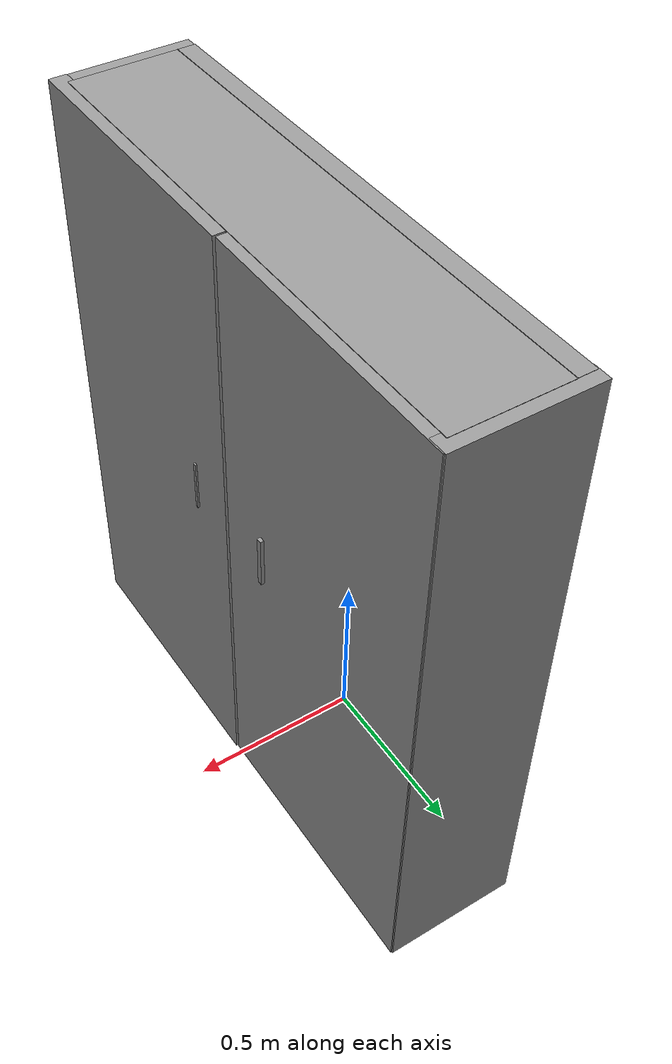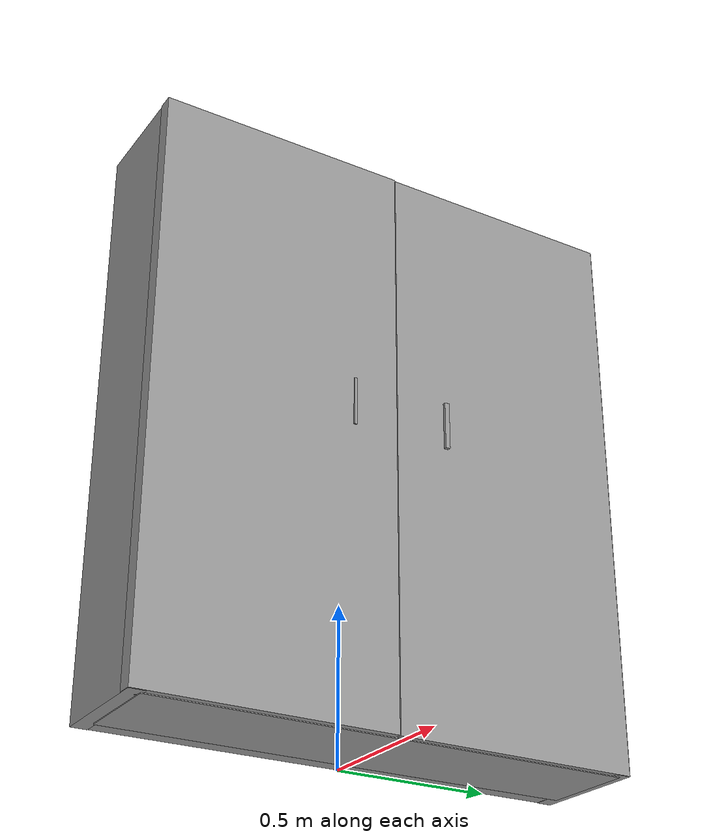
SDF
<?xml version='1.0'?>
<sdf version='1.7'>
  <model name='my_wardrobe'>
    <link name='link'>
      <inertial>
        <mass>1</mass>
        <inertia>
          <ixx>0.166667</ixx>
          <ixy>0</ixy>
          <ixz>0</ixz>
          <iyy>0.166667</iyy>
          <iyz>0</iyz>
          <izz>0.166667</izz>
        </inertia>
        <pose>0 0 0 0 -0 0</pose>
      </inertial>
      <self_collide>0</self_collide>
      <enable_wind>0</enable_wind>
      <kinematic>0</kinematic>
      <pose>0.010503 -0.018536 0.006993 0 -0 0</pose>
      <gravity>1</gravity>
      <visual name='visual'>
        <geometry>
          <box>
            <size>0.05 1.5 1.8</size>
          </box>
        </geometry>
        <material>
          <script>
            <name>Gazebo/Grey</name>
            <uri>file://media/materials/scripts/gazebo.material</uri>
          </script>
          <shader type='pixel'>
            <normal_map>__default__</normal_map>
          </shader>
          <ambient>0.9 0.9 0.9 1</ambient>
          <diffuse>0.9 0.9 0.9 1</diffuse>
          <specular>0.01 0.01 0.01 1</specular>
          <emissive>0 0 0 1</emissive>
        </material>
        <pose>0 0 0.9 0 -0 0</pose>
        <transparency>0</transparency>
        <cast_shadows>1</cast_shadows>
      </visual>
      <collision name='collision'>
        <laser_retro>0</laser_retro>
        <max_contacts>10</max_contacts>
        <pose>0 0 0.9 0 -0 0</pose>
        <geometry>
          <box>
            <size>0.05 1.5 1.8</size>
          </box>
        </geometry>
        <surface>
          <friction>
            <ode>
              <mu>1</mu>
              <mu2>1</mu2>
              <fdir1>0 0 0</fdir1>
              <slip1>0</slip1>
              <slip2>0</slip2>
            </ode>
            <torsional>
              <coefficient>1</coefficient>
              <patch_radius>0</patch_radius>
              <surface_radius>0</surface_radius>
              <use_patch_radius>1</use_patch_radius>
              <ode>
                <slip>0</slip>
              </ode>
            </torsional>
          </friction>
          <bounce>
            <restitution_coefficient>0</restitution_coefficient>
            <threshold>1e+06</threshold>
          </bounce>
          <contact>
            <collide_without_contact>0</collide_without_contact>
            <collide_without_contact_bitmask>1</collide_without_contact_bitmask>
            <collide_bitmask>1</collide_bitmask>
            <ode>
              <soft_cfm>0</soft_cfm>
              <soft_erp>0.2</soft_erp>
              <kp>1e+13</kp>
              <kd>1</kd>
              <max_vel>0.01</max_vel>
              <min_depth>0</min_depth>
            </ode>
            <bullet>
              <split_impulse>1</split_impulse>
              <split_impulse_penetration_threshold>-0.01</split_impulse_penetration_threshold>
              <soft_cfm>0</soft_cfm>
              <soft_erp>0.2</soft_erp>
              <kp>1e+13</kp>
              <kd>1</kd>
            </bullet>
          </contact>
        </surface>
      </collision>
    </link>
    <link name='link_1'>
      <inertial>
        <mass>1</mass>
        <inertia>
          <ixx>0.166667</ixx>
          <ixy>0</ixy>
          <ixz>0</ixz>
          <iyy>0.166667</iyy>
          <iyz>0</iyz>
          <izz>0.166667</izz>
        </inertia>
        <pose>0 0 0 0 -0 0</pose>
      </inertial>
      <pose>0.374225 0.148278 0.975818 0 0 -1.57963</pose>
      <gravity>1</gravity>
      <self_collide>0</self_collide>
      <kinematic>0</kinematic>
      <enable_wind>0</enable_wind>
      <visual name='visual'>
        <pose>0 0 0 0 -0 0</pose>
        <geometry>
          <box>
            <size>0.015 0.01 0.15</size>
          </box>
        </geometry>
        <material>
          <lighting>1</lighting>
          <script>
            <uri>file://media/materials/scripts/gazebo.material</uri>
            <name>Gazebo/Grey</name>
          </script>
          <shader type='pixel'>
            <normal_map>__default__</normal_map>
          </shader>
          <ambient>0.3 0.3 0.3 1</ambient>
          <diffuse>0.7 0.7 0.7 1</diffuse>
          <specular>0.01 0.01 0.01 1</specular>
          <emissive>0 0 0 1</emissive>
        </material>
        <transparency>0</transparency>
        <cast_shadows>1</cast_shadows>
      </visual>
      <collision name='collision'>
        <laser_retro>0</laser_retro>
        <max_contacts>10</max_contacts>
        <pose>0 0 0 0 -0 0</pose>
        <geometry>
          <box>
            <size>0.015 0.01 0.15</size>
          </box>
        </geometry>
        <surface>
          <friction>
            <ode>
              <mu>1</mu>
              <mu2>1</mu2>
              <fdir1>0 0 0</fdir1>
              <slip1>0</slip1>
              <slip2>0</slip2>
            </ode>
            <torsional>
              <coefficient>1</coefficient>
              <patch_radius>0</patch_radius>
              <surface_radius>0</surface_radius>
              <use_patch_radius>1</use_patch_radius>
              <ode>
                <slip>0</slip>
              </ode>
            </torsional>
          </friction>
          <bounce>
            <restitution_coefficient>0</restitution_coefficient>
            <threshold>1e+06</threshold>
          </bounce>
          <contact>
            <collide_without_contact>0</collide_without_contact>
            <collide_without_contact_bitmask>1</collide_without_contact_bitmask>
            <collide_bitmask>1</collide_bitmask>
            <ode>
              <soft_cfm>0</soft_cfm>
              <soft_erp>0.2</soft_erp>
              <kp>1e+13</kp>
              <kd>1</kd>
              <max_vel>0.01</max_vel>
              <min_depth>0</min_depth>
            </ode>
            <bullet>
              <split_impulse>1</split_impulse>
              <split_impulse_penetration_threshold>-0.01</split_impulse_penetration_threshold>
              <soft_cfm>0</soft_cfm>
              <soft_erp>0.2</soft_erp>
              <kp>1e+13</kp>
              <kd>1</kd>
            </bullet>
          </contact>
        </surface>
      </collision>
    </link>
    <link name='link_1_clone'>
      <inertial>
        <mass>1</mass>
        <inertia>
          <ixx>0.166667</ixx>
          <ixy>0</ixy>
          <ixz>0</ixz>
          <iyy>0.166667</iyy>
          <iyz>0</iyz>
          <izz>0.166667</izz>
        </inertia>
        <pose>0 0 0 0 -0 0</pose>
      </inertial>
      <pose>0.36807 -0.165856 0.973071 0 -0 3.12392</pose>
      <gravity>1</gravity>
      <self_collide>0</self_collide>
      <kinematic>0</kinematic>
      <enable_wind>0</enable_wind>
      <visual name='visual'>
        <pose>0 0 0 0 -0 0</pose>
        <geometry>
          <box>
            <size>0.015 0.01 0.15</size>
          </box>
        </geometry>
        <material>
          <lighting>1</lighting>
          <script>
            <uri>file://media/materials/scripts/gazebo.material</uri>
            <name>Gazebo/Grey</name>
          </script>
          <shader type='pixel'>
            <normal_map>__default__</normal_map>
          </shader>
          <ambient>0.3 0.3 0.3 1</ambient>
          <diffuse>0.7 0.7 0.7 1</diffuse>
          <specular>0.01 0.01 0.01 1</specular>
          <emissive>0 0 0 1</emissive>
        </material>
        <transparency>0</transparency>
        <cast_shadows>1</cast_shadows>
      </visual>
      <collision name='collision'>
        <laser_retro>0</laser_retro>
        <max_contacts>10</max_contacts>
        <pose>0 0 0 0 -0 0</pose>
        <geometry>
          <box>
            <size>0.015 0.01 0.15</size>
          </box>
        </geometry>
        <surface>
          <friction>
            <ode>
              <mu>1</mu>
              <mu2>1</mu2>
              <fdir1>0 0 0</fdir1>
              <slip1>0</slip1>
              <slip2>0</slip2>
            </ode>
            <torsional>
              <coefficient>1</coefficient>
              <patch_radius>0</patch_radius>
              <surface_radius>0</surface_radius>
              <use_patch_radius>1</use_patch_radius>
              <ode>
                <slip>0</slip>
              </ode>
            </torsional>
          </friction>
          <bounce>
            <restitution_coefficient>0</restitution_coefficient>
            <threshold>1e+06</threshold>
          </bounce>
          <contact>
            <collide_without_contact>0</collide_without_contact>
            <collide_without_contact_bitmask>1</collide_without_contact_bitmask>
            <collide_bitmask>1</collide_bitmask>
            <ode>
              <soft_cfm>0</soft_cfm>
              <soft_erp>0.2</soft_erp>
              <kp>1e+13</kp>
              <kd>1</kd>
              <max_vel>0.01</max_vel>
              <min_depth>0</min_depth>
            </ode>
            <bullet>
              <split_impulse>1</split_impulse>
              <split_impulse_penetration_threshold>-0.01</split_impulse_penetration_threshold>
              <soft_cfm>0</soft_cfm>
              <soft_erp>0.2</soft_erp>
              <kp>1e+13</kp>
              <kd>1</kd>
            </bullet>
          </contact>
        </surface>
      </collision>
    </link>
    <link name='link_clone'>
      <inertial>
        <mass>1</mass>
        <inertia>
          <ixx>0.166667</ixx>
          <ixy>0</ixy>
          <ixz>0</ixz>
          <iyy>0.166667</iyy>
          <iyz>0</iyz>
          <izz>0.166667</izz>
        </inertia>
        <pose>0 0 0 0 -0 0</pose>
      </inertial>
      <self_collide>0</self_collide>
      <enable_wind>0</enable_wind>
      <kinematic>0</kinematic>
      <pose>0.199559 -0.011174 -1.077 1.1e-05 -0.001065 2e-06</pose>
      <gravity>1</gravity>
      <visual name='visual'>
        <geometry>
          <box>
            <size>0.3 1.5 0.04</size>
          </box>
        </geometry>
        <material>
          <script>
            <name>Gazebo/Grey</name>
            <uri>file://media/materials/scripts/gazebo.material</uri>
          </script>
          <shader type='pixel'>
            <normal_map>__default__</normal_map>
          </shader>
          <ambient>0.9 0.9 0.9 1</ambient>
          <diffuse>0.9 0.9 0.9 1</diffuse>
          <specular>0.01 0.01 0.01 1</specular>
          <emissive>0 0 0 1</emissive>
        </material>
        <pose>0 0 1.1 0 -0 0</pose>
        <transparency>0</transparency>
        <cast_shadows>1</cast_shadows>
      </visual>
      <collision name='collision'>
        <laser_retro>0</laser_retro>
        <max_contacts>10</max_contacts>
        <pose>0 0 1.1 0 -0 0</pose>
        <geometry>
          <box>
            <size>0.3 1.5 0.04</size>
          </box>
        </geometry>
        <surface>
          <friction>
            <ode>
              <mu>1</mu>
              <mu2>1</mu2>
              <fdir1>0 0 0</fdir1>
              <slip1>0</slip1>
              <slip2>0</slip2>
            </ode>
            <torsional>
              <coefficient>1</coefficient>
              <patch_radius>0</patch_radius>
              <surface_radius>0</surface_radius>
              <use_patch_radius>1</use_patch_radius>
              <ode>
                <slip>0</slip>
              </ode>
            </torsional>
          </friction>
          <bounce>
            <restitution_coefficient>0</restitution_coefficient>
            <threshold>1e+06</threshold>
          </bounce>
          <contact>
            <collide_without_contact>0</collide_without_contact>
            <collide_without_contact_bitmask>1</collide_without_contact_bitmask>
            <collide_bitmask>1</collide_bitmask>
            <ode>
              <soft_cfm>0</soft_cfm>
              <soft_erp>0.2</soft_erp>
              <kp>1e+13</kp>
              <kd>1</kd>
              <max_vel>0.01</max_vel>
              <min_depth>0</min_depth>
            </ode>
            <bullet>
              <split_impulse>1</split_impulse>
              <split_impulse_penetration_threshold>-0.01</split_impulse_penetration_threshold>
              <soft_cfm>0</soft_cfm>
              <soft_erp>0.2</soft_erp>
              <kp>1e+13</kp>
              <kd>1</kd>
            </bullet>
          </contact>
        </surface>
      </collision>
    </link>
    <link name='link_clone_0'>
      <inertial>
        <mass>1</mass>
        <inertia>
          <ixx>0.166667</ixx>
          <ixy>0</ixy>
          <ixz>0</ixz>
          <iyy>0.166667</iyy>
          <iyz>0</iyz>
          <izz>0.166667</izz>
        </inertia>
        <pose>0 0 0 0 -0 0</pose>
      </inertial>
      <self_collide>0</self_collide>
      <enable_wind>0</enable_wind>
      <kinematic>0</kinematic>
      <pose>0.1762 -0.777121 0.006003 0 -0 0</pose>
      <gravity>1</gravity>
      <visual name='visual'>
        <geometry>
          <box>
            <size>0.05 0.38 1.8</size>
          </box>
        </geometry>
        <material>
          <script>
            <name>Gazebo/Grey</name>
            <uri>file://media/materials/scripts/gazebo.material</uri>
          </script>
          <shader type='pixel'>
            <normal_map>__default__</normal_map>
          </shader>
          <ambient>0.9 0.9 0.9 1</ambient>
          <diffuse>0.9 0.9 0.9 1</diffuse>
          <specular>0.01 0.01 0.01 1</specular>
          <emissive>0 0 0 1</emissive>
        </material>
        <pose>0 0 0.9 0 -0 1.5707</pose>
        <transparency>0</transparency>
        <cast_shadows>1</cast_shadows>
      </visual>
      <collision name='collision'>
        <laser_retro>0</laser_retro>
        <max_contacts>10</max_contacts>
        <pose>0 0 0.9 0 -0 1.5707</pose>
        <geometry>
          <box>
            <size>0.05 0.38 1.8</size>
          </box>
        </geometry>
        <surface>
          <friction>
            <ode>
              <mu>1</mu>
              <mu2>1</mu2>
              <fdir1>0 0 0</fdir1>
              <slip1>0</slip1>
              <slip2>0</slip2>
            </ode>
            <torsional>
              <coefficient>1</coefficient>
              <patch_radius>0</patch_radius>
              <surface_radius>0</surface_radius>
              <use_patch_radius>1</use_patch_radius>
              <ode>
                <slip>0</slip>
              </ode>
            </torsional>
          </friction>
          <bounce>
            <restitution_coefficient>0</restitution_coefficient>
            <threshold>1e+06</threshold>
          </bounce>
          <contact>
            <collide_without_contact>0</collide_without_contact>
            <collide_without_contact_bitmask>1</collide_without_contact_bitmask>
            <collide_bitmask>1</collide_bitmask>
            <ode>
              <soft_cfm>0</soft_cfm>
              <soft_erp>0.2</soft_erp>
              <kp>1e+13</kp>
              <kd>1</kd>
              <max_vel>0.01</max_vel>
              <min_depth>0</min_depth>
            </ode>
            <bullet>
              <split_impulse>1</split_impulse>
              <split_impulse_penetration_threshold>-0.01</split_impulse_penetration_threshold>
              <soft_cfm>0</soft_cfm>
              <soft_erp>0.2</soft_erp>
              <kp>1e+13</kp>
              <kd>1</kd>
            </bullet>
          </contact>
        </surface>
      </collision>
    </link>
    <link name='link_clone_0_clone'>
      <inertial>
        <mass>1</mass>
        <inertia>
          <ixx>0.166667</ixx>
          <ixy>0</ixy>
          <ixz>0</ixz>
          <iyy>0.166667</iyy>
          <iyz>0</iyz>
          <izz>0.166667</izz>
        </inertia>
        <pose>0 0 0 0 -0 0</pose>
      </inertial>
      <self_collide>0</self_collide>
      <enable_wind>0</enable_wind>
      <kinematic>0</kinematic>
      <pose>0.173251 0.740189 0.006003 0 -0 0</pose>
      <gravity>1</gravity>
      <visual name='visual'>
        <geometry>
          <box>
            <size>0.05 0.38 1.8</size>
          </box>
        </geometry>
        <material>
          <script>
            <name>Gazebo/Grey</name>
            <uri>file://media/materials/scripts/gazebo.material</uri>
          </script>
          <shader type='pixel'>
            <normal_map>__default__</normal_map>
          </shader>
          <ambient>0.9 0.9 0.9 1</ambient>
          <diffuse>0.9 0.9 0.9 1</diffuse>
          <specular>0.01 0.01 0.01 1</specular>
          <emissive>0 0 0 1</emissive>
        </material>
        <pose>0 0 0.9 0 -0 1.5707</pose>
        <transparency>0</transparency>
        <cast_shadows>1</cast_shadows>
      </visual>
      <collision name='collision'>
        <laser_retro>0</laser_retro>
        <max_contacts>10</max_contacts>
        <pose>0 0 0.9 0 -0 1.5707</pose>
        <geometry>
          <box>
            <size>0.05 0.38 1.8</size>
          </box>
        </geometry>
        <surface>
          <friction>
            <ode>
              <mu>1</mu>
              <mu2>1</mu2>
              <fdir1>0 0 0</fdir1>
              <slip1>0</slip1>
              <slip2>0</slip2>
            </ode>
            <torsional>
              <coefficient>1</coefficient>
              <patch_radius>0</patch_radius>
              <surface_radius>0</surface_radius>
              <use_patch_radius>1</use_patch_radius>
              <ode>
                <slip>0</slip>
              </ode>
            </torsional>
          </friction>
          <bounce>
            <restitution_coefficient>0</restitution_coefficient>
            <threshold>1e+06</threshold>
          </bounce>
          <contact>
            <collide_without_contact>0</collide_without_contact>
            <collide_without_contact_bitmask>1</collide_without_contact_bitmask>
            <collide_bitmask>1</collide_bitmask>
            <ode>
              <soft_cfm>0</soft_cfm>
              <soft_erp>0.2</soft_erp>
              <kp>1e+13</kp>
              <kd>1</kd>
              <max_vel>0.01</max_vel>
              <min_depth>0</min_depth>
            </ode>
            <bullet>
              <split_impulse>1</split_impulse>
              <split_impulse_penetration_threshold>-0.01</split_impulse_penetration_threshold>
              <soft_cfm>0</soft_cfm>
              <soft_erp>0.2</soft_erp>
              <kp>1e+13</kp>
              <kd>1</kd>
            </bullet>
          </contact>
        </surface>
      </collision>
    </link>
    <link name='link_clone_0_clone_0'>
      <inertial>
        <mass>1</mass>
        <inertia>
          <ixx>0.166667</ixx>
          <ixy>0</ixy>
          <ixz>0</ixz>
          <iyy>0.166667</iyy>
          <iyz>0</iyz>
          <izz>0.166667</izz>
        </inertia>
        <pose>0 0 0 0 -0 0</pose>
      </inertial>
      <self_collide>0</self_collide>
      <enable_wind>0</enable_wind>
      <kinematic>0</kinematic>
      <pose>0.345768 -0.414419 0.006003 0 -0 0</pose>
      <gravity>1</gravity>
      <visual name='visual'>
        <geometry>
          <box>
            <size>0.05 0.78 1.8</size>
          </box>
        </geometry>
        <material>
          <script>
            <name>Gazebo/Grey</name>
            <uri>file://media/materials/scripts/gazebo.material</uri>
          </script>
          <shader type='pixel'>
            <normal_map>__default__</normal_map>
          </shader>
          <ambient>0.87 0.87 0.87 1</ambient>
          <diffuse>0.87 0.87 0.87 1</diffuse>
          <specular>0.01 0.01 0.01 1</specular>
          <emissive>0 0 0 1</emissive>
        </material>
        <pose>0 0 0.9 0 -0 0</pose>
        <transparency>0</transparency>
        <cast_shadows>1</cast_shadows>
      </visual>
      <collision name='collision'>
        <laser_retro>0</laser_retro>
        <max_contacts>10</max_contacts>
        <pose>0 0 0.9 0 -0 0</pose>
        <geometry>
          <box>
            <size>0.05 0.78 1.8</size>
          </box>
        </geometry>
        <surface>
          <friction>
            <ode>
              <mu>1</mu>
              <mu2>1</mu2>
              <fdir1>0 0 0</fdir1>
              <slip1>0</slip1>
              <slip2>0</slip2>
            </ode>
            <torsional>
              <coefficient>1</coefficient>
              <patch_radius>0</patch_radius>
              <surface_radius>0</surface_radius>
              <use_patch_radius>1</use_patch_radius>
              <ode>
                <slip>0</slip>
              </ode>
            </torsional>
          </friction>
          <bounce>
            <restitution_coefficient>0</restitution_coefficient>
            <threshold>1e+06</threshold>
          </bounce>
          <contact>
            <collide_without_contact>0</collide_without_contact>
            <collide_without_contact_bitmask>1</collide_without_contact_bitmask>
            <collide_bitmask>1</collide_bitmask>
            <ode>
              <soft_cfm>0</soft_cfm>
              <soft_erp>0.2</soft_erp>
              <kp>1e+13</kp>
              <kd>1</kd>
              <max_vel>0.01</max_vel>
              <min_depth>0</min_depth>
            </ode>
            <bullet>
              <split_impulse>1</split_impulse>
              <split_impulse_penetration_threshold>-0.01</split_impulse_penetration_threshold>
              <soft_cfm>0</soft_cfm>
              <soft_erp>0.2</soft_erp>
              <kp>1e+13</kp>
              <kd>1</kd>
            </bullet>
          </contact>
        </surface>
      </collision>
    </link>
    <link name='link_clone_0_clone_0_clone'>
      <inertial>
        <mass>1</mass>
        <inertia>
          <ixx>0.166667</ixx>
          <ixy>0</ixy>
          <ixz>0</ixz>
          <iyy>0.166667</iyy>
          <iyz>0</iyz>
          <izz>0.166667</izz>
        </inertia>
        <pose>0 0 0 0 -0 0</pose>
      </inertial>
      <self_collide>0</self_collide>
      <enable_wind>0</enable_wind>
      <kinematic>0</kinematic>
      <pose>0.34164 0.370965 0.006003 0 -0 0</pose>
      <gravity>1</gravity>
      <visual name='visual'>
        <geometry>
          <box>
            <size>0.05 0.78 1.8</size>
          </box>
        </geometry>
        <material>
          <script>
            <name>Gazebo/Grey</name>
            <uri>file://media/materials/scripts/gazebo.material</uri>
          </script>
          <shader type='pixel'>
            <normal_map>__default__</normal_map>
          </shader>
          <ambient>0.87 0.87 0.87 1</ambient>
          <diffuse>0.87 0.87 0.87 1</diffuse>
          <specular>0.01 0.01 0.01 1</specular>
          <emissive>0 0 0 1</emissive>
        </material>
        <pose>0 0 0.9 0 -0 0</pose>
        <transparency>0</transparency>
        <cast_shadows>1</cast_shadows>
      </visual>
      <collision name='collision'>
        <laser_retro>0</laser_retro>
        <max_contacts>10</max_contacts>
        <pose>0 0 0.9 0 -0 0</pose>
        <geometry>
          <box>
            <size>0.05 0.78 1.8</size>
          </box>
        </geometry>
        <surface>
          <friction>
            <ode>
              <mu>1</mu>
              <mu2>1</mu2>
              <fdir1>0 0 0</fdir1>
              <slip1>0</slip1>
              <slip2>0</slip2>
            </ode>
            <torsional>
              <coefficient>1</coefficient>
              <patch_radius>0</patch_radius>
              <surface_radius>0</surface_radius>
              <use_patch_radius>1</use_patch_radius>
              <ode>
                <slip>0</slip>
              </ode>
            </torsional>
          </friction>
          <bounce>
            <restitution_coefficient>0</restitution_coefficient>
            <threshold>1e+06</threshold>
          </bounce>
          <contact>
            <collide_without_contact>0</collide_without_contact>
            <collide_without_contact_bitmask>1</collide_without_contact_bitmask>
            <collide_bitmask>1</collide_bitmask>
            <ode>
              <soft_cfm>0</soft_cfm>
              <soft_erp>0.2</soft_erp>
              <kp>1e+13</kp>
              <kd>1</kd>
              <max_vel>0.01</max_vel>
              <min_depth>0</min_depth>
            </ode>
            <bullet>
              <split_impulse>1</split_impulse>
              <split_impulse_penetration_threshold>-0.01</split_impulse_penetration_threshold>
              <soft_cfm>0</soft_cfm>
              <soft_erp>0.2</soft_erp>
              <kp>1e+13</kp>
              <kd>1</kd>
            </bullet>
          </contact>
        </surface>
      </collision>
    </link>
    <link name='link_clone_clone_0'>
      <inertial>
        <mass>1</mass>
        <inertia>
          <ixx>0.166667</ixx>
          <ixy>0</ixy>
          <ixz>0</ixz>
          <iyy>0.166667</iyy>
          <iyz>0</iyz>
          <izz>0.166667</izz>
        </inertia>
        <pose>0 0 0 0 -0 0</pose>
      </inertial>
      <self_collide>0</self_collide>
      <enable_wind>0</enable_wind>
      <kinematic>0</kinematic>
      <pose>0.186363 -0.017339 0.93719 2.2e-05 0.000604 0.000114</pose>
      <gravity>0</gravity>
      <visual name='visual'>
        <geometry>
          <box>
            <size>0.3 1.5 0.04</size>
          </box>
        </geometry>
        <material>
          <script>
            <name>Gazebo/Grey</name>
            <uri>file://media/materials/scripts/gazebo.material</uri>
          </script>
          <shader type='pixel'>
            <normal_map>__default__</normal_map>
          </shader>
          <ambient>0.9 0.9 0.9 1</ambient>
          <diffuse>0.9 0.9 0.9 1</diffuse>
          <specular>0.01 0.01 0.01 1</specular>
          <emissive>0 0 0 1</emissive>
        </material>
        <pose>0 0 0.85 0 -0 0</pose>
        <transparency>0</transparency>
        <cast_shadows>1</cast_shadows>
      </visual>
      <collision name='collision'>
        <laser_retro>0</laser_retro>
        <max_contacts>10</max_contacts>
        <pose>0 0 0.85 0 -0 0</pose>
        <geometry>
          <box>
            <size>0.3 1.5 0.04</size>
          </box>
        </geometry>
        <surface>
          <friction>
            <ode>
              <mu>1</mu>
              <mu2>1</mu2>
              <fdir1>0 0 0</fdir1>
              <slip1>0</slip1>
              <slip2>0</slip2>
            </ode>
            <torsional>
              <coefficient>1</coefficient>
              <patch_radius>0</patch_radius>
              <surface_radius>0</surface_radius>
              <use_patch_radius>1</use_patch_radius>
              <ode>
                <slip>0</slip>
              </ode>
            </torsional>
          </friction>
          <bounce>
            <restitution_coefficient>0</restitution_coefficient>
            <threshold>1e+06</threshold>
          </bounce>
          <contact>
            <collide_without_contact>0</collide_without_contact>
            <collide_without_contact_bitmask>1</collide_without_contact_bitmask>
            <collide_bitmask>1</collide_bitmask>
            <ode>
              <soft_cfm>0</soft_cfm>
              <soft_erp>0.2</soft_erp>
              <kp>1e+13</kp>
              <kd>1</kd>
              <max_vel>0.01</max_vel>
              <min_depth>0</min_depth>
            </ode>
            <bullet>
              <split_impulse>1</split_impulse>
              <split_impulse_penetration_threshold>-0.01</split_impulse_penetration_threshold>
              <soft_cfm>0</soft_cfm>
              <soft_erp>0.2</soft_erp>
              <kp>1e+13</kp>
              <kd>1</kd>
            </bullet>
          </contact>
        </surface>
      </collision>
    </link>
    <static>1</static>
    <allow_auto_disable>1</allow_auto_disable>
  </model>
</sdf>
